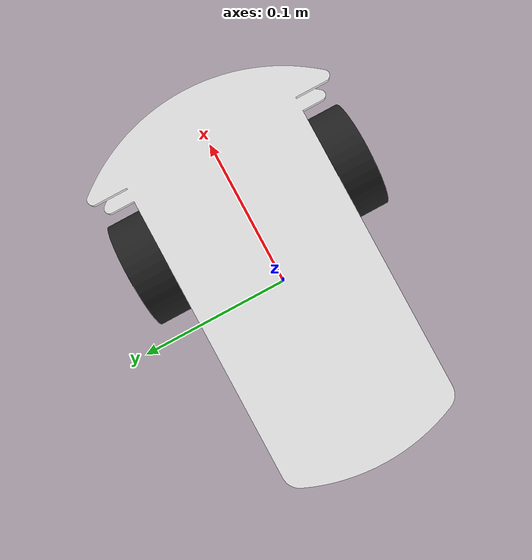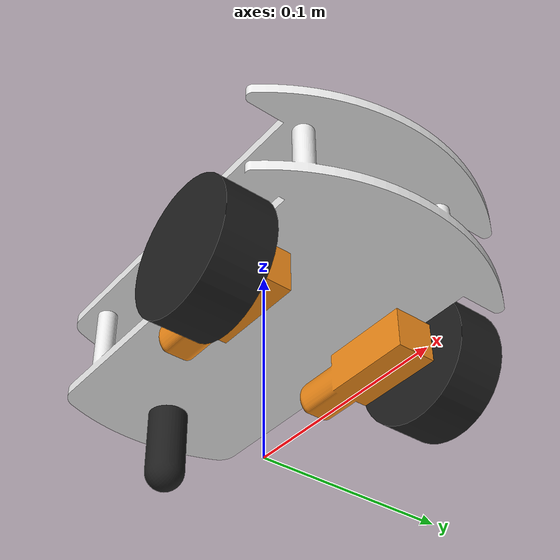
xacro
<?xml version="1.0"?>
<!-- Basic differential drive mobile base -->
<robot xmlns:xacro="http://www.ros.org/wiki/xacro" name="racoonbot">
  <xacro:arg name="prefix" default="" />
  <xacro:arg name="use_mock_hardware" default="false" />

  <xacro:include filename="$(find racoonbot_pkg)/urdf/racoonbot_description.urdf.xacro" />

  <!-- Import Rviz colors -->
  <xacro:include filename="$(find racoonbot_pkg)/urdf/racoonbot.materials.xacro" />

  <!-- Import racoonbot ros2_control description -->
  <xacro:include filename="$(find racoonbot_pkg)/ros2_control/racoonbot.ros2_control.xacro" />

  <xacro:racoonbot prefix="$(arg prefix)" />

  <xacro:racoonbot_ros2_control
    name="RacoonBot" prefix="$(arg prefix)" use_mock_hardware="$(arg use_mock_hardware)"/>

</robot>

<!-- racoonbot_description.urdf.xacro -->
<robot xmlns:xacro="http://www.ros.org/wiki/xacro">
  <xacro:macro name="racoonbot" params="prefix">

    <link name="base_footprint"/>

    <joint name="base_joint" type="fixed">
      <parent link="base_footprint"/>
      <child link="base_link" />
      <origin xyz="0 0 0.0625" rpy="0 0 0"/>
    </joint>

    <link name="base_link">
      <visual>
        <geometry>
         <mesh filename="package://racoonbot_pkg/meshes/base_link.dae"/>
        </geometry>
        <origin xyz="0 0 0" rpy="0 0 0"/>
        <material name="white"/>
      </visual>

      <inertial>
        <origin rpy="0 0 0" xyz="0 0 0"/>
        <mass value="0.3"/>
        <inertia ixx="0.3323" ixy="0" ixz="0" iyy="1.0280" iyz="0" izz="1.1346"/>
      </inertial>
    </link>

    <joint name="imu_joint" type="fixed">
      <parent link="base_link"/>
      <child link="imu_link"/>
      <origin xyz="0.0 0 0.005" rpy="0 0 0"/>
    </joint>

    <link name="imu_link"/>

    <joint name="right_motor_link_joint" type="fixed">
      <parent link="base_link"/>
      <child link="right_motor_link" />
      <origin xyz="0.022 -0.040 -0.0125" rpy="0 0 0"/>
    </joint>

    <link name="right_motor_link">
      <visual>
        <geometry>
         <mesh filename="package://racoonbot_pkg/meshes/motor_link.dae"/>
        </geometry>
        <origin xyz="0 0 0" rpy="1.5708 0 0"/>
        <material name="orange"/>
      </visual>

      <inertial>
        <origin rpy="0 0 0" xyz="0 0 0"/>
        <mass value="0.2"/>
        <inertia ixx="0.0015" ixy="0.0" ixz="0.0" iyy="0.0105" iyz="0.0" izz="0.0104"/>
      </inertial>

    </link>

    <joint name="left_motor_link_joint" type="fixed">
      <parent link="base_link"/>
      <child link="left_motor_link" />
      <origin xyz="0.022 0.040 -0.0125" rpy="0 0 0"/>
    </joint>

    <link name="left_motor_link">
      <visual>
        <geometry>
         <mesh filename="package://racoonbot_pkg/meshes/motor_link.dae"/>
        </geometry>
        <origin xyz="0 0 0" rpy="1.5708 0 0"/>
        <material name="orange"/>
      </visual>
      <inertial>
        <origin rpy="0 0 0" xyz="0 0 0"/>
        <mass value="0.2"/>
        <inertia ixx="0.0015" ixy="0" ixz="0" iyy="0.0105" iyz="0" izz="0.0104"/>
      </inertial>

    </link>

    <joint name="right_wheel_joint" type="continuous">
      <parent link="right_motor_link"/>
      <child link="right_wheel_link" />
      <origin xyz="0.021 -0.023 0" rpy="0 0 0"/>
      <axis xyz="0 1 0"/>
    </joint>

    <link name="right_wheel_link">
      <visual>
        <geometry>
         <mesh filename="package://racoonbot_pkg/meshes/wheel_link.dae"/>
        </geometry>
        <origin xyz="0 0 0" rpy="0 0 0"/>
        <material name="black"/>
      </visual>
      <inertial>
        <origin rpy="0 0 0" xyz="0 0 0"/>
        <mass value="0.15"/>
        <inertia ixx="0.0262" ixy="0" ixz="0" iyy="0.0437" iyz="0" izz="0.0262"/>
      </inertial>
    </link>

    <joint name="left_wheel_joint" type="continuous">
      <parent link="left_motor_link"/>
      <child link="left_wheel_link" />
      <origin xyz="0.021 0.023 0" rpy="0 0 0"/>
      <axis xyz="0 1 0"/>
    </joint>

    <link name="left_wheel_link">
      <visual>
        <geometry>
         <mesh filename="package://racoonbot_pkg/meshes/wheel_link.dae"/>
        </geometry>
        <origin xyz="0 0 0" rpy="0 0 0"/>
        <material name="black"/>
      </visual>
      <inertial>
        <origin rpy="0 0 0" xyz="0 0 0"/>
        <mass value="0.15"/>
        <inertia ixx="0.0262" ixy="0" ixz="0" iyy="0.0437" iyz="0" izz="0.0262"/>
      </inertial>
    </link>

    <joint name="caster_link_joint" type="fixed">
      <parent link="base_link"/>
      <child link="caster_link" />
      <origin xyz="-0.080 0 0" rpy="0 0 0"/>
    </joint>

    <link name="caster_link">
      <visual>
        <geometry>
         <mesh filename="package://racoonbot_pkg/meshes/caster_link.dae"/>
        </geometry>
        <origin xyz="0 0 0" rpy="0 0 0"/>
        <material name="black"/>
      </visual>
        <inertial>
        <origin rpy="0 0 0" xyz="0 0 0"/>
        <mass value="0.08"/>
        <inertia ixx="0.0036" ixy="0" ixz="0" iyy="0.0036" iyz="0" izz="0.0015"/>
      </inertial>
    </link>

  </xacro:macro>
</robot>
